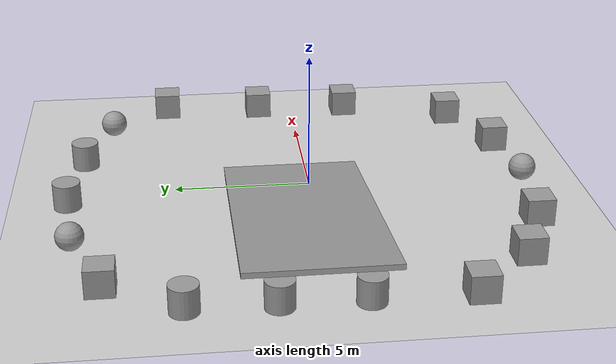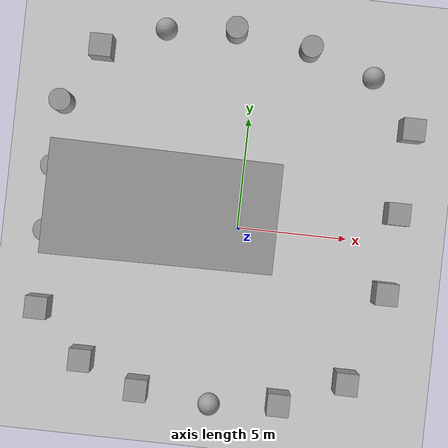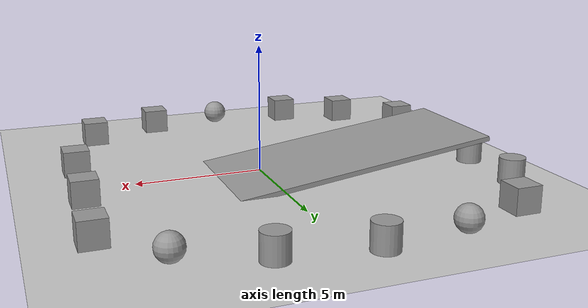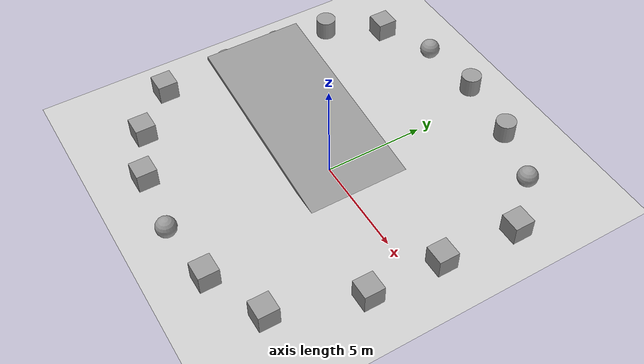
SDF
<sdf version="1.7">
 <world name="default">
  <light name="sun" type="directional">
   <pose>0 0 10 0 -0 0</pose>
   <diffuse>0.8 0.8 0.8 1</diffuse>
   <specular>0.2 0.2 0.2 1</specular>
   <attenuation>
    <range>1000</range>
    <constant>0.9</constant>
    <linear>0.01</linear>
    <quadratic>0.001</quadratic>
   </attenuation>
   <direction>-0.5 0.1 -0.9</direction>
   <spot><inner_angle>0</inner_angle><outer_angle>0</outer_angle><falloff>0</falloff></spot>
  </light>
  <model name="ground_plane">
   <static>1</static>
   <link name="link">
    <collision name="collision">
     <geometry><plane><normal>0 0 1</normal><size>100 100</size></plane></geometry>
     <surface><friction><ode><mu>100</mu><mu2>50</mu2></ode></friction></surface>
    </collision>
    <visual name="visual">
     <cast_shadows>0</cast_shadows>
     <geometry><plane><normal>0 0 1</normal><size>100 100</size></plane></geometry>
     <material>
      <script><uri>file://media/materials/scripts/gazebo.material</uri><name>Gazebo/Grey</name></script>
     </material>
    </visual>
   </link>
  </model>
  <gravity>0 0 -9.8</gravity>
  <magnetic_field>6e-06 2.3e-05 -4.2e-05</magnetic_field>
  <atmosphere type="adiabatic"/>
  <physics type="ode">
   <max_step_size>0.001</max_step_size>
   <real_time_factor>1</real_time_factor>
   <real_time_update_rate>1000</real_time_update_rate>
  </physics>
  <scene><ambient>0.4 0.4 0.4 1</ambient><background>0.7 0.7 0.7 1</background><shadows>1</shadows></scene>
  <spherical_coordinates>
   <surface_model>EARTH_WGS84</surface_model>
   <latitude_deg>0</latitude_deg>
   <longitude_deg>0</longitude_deg>
   <elevation>0</elevation>
   <heading_deg>0</heading_deg>
  </spherical_coordinates>
  <model name="Simulation_1">
   <link name="link_0">
    <inertial>
     <mass>1</mass>
     <inertia><ixx>0.145833</ixx><ixy>0</ixy><ixz>0</ixz><iyy>0.145833</iyy><iyz>0</iyz><izz>0.125</izz></inertia>
    </inertial>
    <pose>-7.3976 -1.56403 0.01208 0 -0 0</pose>
    <visual name="visual">
     <geometry><cylinder><radius>0.5</radius><length>1</length></cylinder></geometry>
     <material>
      <lighting>1</lighting>
      <script><uri>file://media/materials/scripts/gazebo.material</uri><name>Gazebo/Grey</name></script>
      <shader type="pixel"/>
     </material>
    </visual>
    <collision name="collision">
     <geometry><cylinder><radius>0.5</radius><length>1</length></cylinder></geometry>
     <surface>
      <friction>
       <ode><mu>1</mu><mu2>1</mu2><fdir1>0 0 0</fdir1><slip1>0</slip1><slip2>0</slip2></ode>
       <torsional>
        <coefficient>1</coefficient>
        <patch_radius>0</patch_radius>
        <surface_radius>0</surface_radius>
        <use_patch_radius>1</use_patch_radius>
        <ode><slip>0</slip></ode>
       </torsional>
      </friction>
      <bounce><restitution_coefficient>0</restitution_coefficient><threshold>1e+06</threshold></bounce>
      <contact>
       <collide_without_contact>0</collide_without_contact>
       <collide_without_contact_bitmask>1</collide_without_contact_bitmask>
       <collide_bitmask>1</collide_bitmask>
       <ode>
        <soft_cfm>0</soft_cfm>
        <soft_erp>0.2</soft_erp>
        <kp>1e+13</kp>
        <kd>1</kd>
        <max_vel>0.01</max_vel>
        <min_depth>0</min_depth>
       </ode>
       <bullet>
        <split_impulse>1</split_impulse>
        <split_impulse_penetration_threshold>-0.01</split_impulse_penetration_threshold>
        <soft_cfm>0</soft_cfm>
        <soft_erp>0.2</soft_erp>
        <kp>1e+13</kp>
        <kd>1</kd>
       </bullet>
      </contact>
     </surface>
    </collision>
   </link>
   <link name="link_0_clone">
    <inertial>
     <mass>1</mass>
     <inertia><ixx>0.145833</ixx><ixy>0</ixy><ixz>0</ixz><iyy>0.145833</iyy><iyz>0</iyz><izz>0.125</izz></inertia>
    </inertial>
    <pose>-7.3752 1.31634 0.01208 0 -0 0</pose>
    <visual name="visual">
     <geometry><cylinder><radius>0.5</radius><length>1</length></cylinder></geometry>
     <material>
      <lighting>1</lighting>
      <script><uri>file://media/materials/scripts/gazebo.material</uri><name>Gazebo/Grey</name></script>
      <shader type="pixel"/>
     </material>
    </visual>
    <collision name="collision">
     <geometry><cylinder><radius>0.5</radius><length>1</length></cylinder></geometry>
     <surface>
      <friction>
       <ode><mu>1</mu><mu2>1</mu2><fdir1>0 0 0</fdir1><slip1>0</slip1><slip2>0</slip2></ode>
       <torsional>
        <coefficient>1</coefficient>
        <patch_radius>0</patch_radius>
        <surface_radius>0</surface_radius>
        <use_patch_radius>1</use_patch_radius>
        <ode><slip>0</slip></ode>
       </torsional>
      </friction>
      <bounce><restitution_coefficient>0</restitution_coefficient><threshold>1e+06</threshold></bounce>
      <contact>
       <collide_without_contact>0</collide_without_contact>
       <collide_without_contact_bitmask>1</collide_without_contact_bitmask>
       <collide_bitmask>1</collide_bitmask>
       <ode>
        <soft_cfm>0</soft_cfm>
        <soft_erp>0.2</soft_erp>
        <kp>1e+13</kp>
        <kd>1</kd>
        <max_vel>0.01</max_vel>
        <min_depth>0</min_depth>
       </ode>
       <bullet>
        <split_impulse>1</split_impulse>
        <split_impulse_penetration_threshold>-0.01</split_impulse_penetration_threshold>
        <soft_cfm>0</soft_cfm>
        <soft_erp>0.2</soft_erp>
        <kp>1e+13</kp>
        <kd>1</kd>
       </bullet>
      </contact>
     </surface>
    </collision>
   </link>
   <link name="link_1">
    <inertial>
     <mass>1</mass>
     <inertia>
      <ixx>0.166667</ixx>
      <ixy>0</ixy>
      <ixz>0</ixz>
      <iyy>0.166667</iyy>
      <iyz>0</iyz>
      <izz>0.166667</izz>
     </inertia>
    </inertial>
    <pose>8.48683 4.60153 0.01208 0 -0 0</pose>
    <visual name="visual">
     <geometry><box><size>1 1 1</size></box></geometry>
     <material>
      <lighting>1</lighting>
      <script><uri>file://media/materials/scripts/gazebo.material</uri><name>Gazebo/Grey</name></script>
      <shader type="pixel"/>
     </material>
    </visual>
    <collision name="collision">
     <geometry><box><size>1 1 1</size></box></geometry>
     <surface>
      <friction>
       <ode><mu>1</mu><mu2>1</mu2><fdir1>0 0 0</fdir1><slip1>0</slip1><slip2>0</slip2></ode>
       <torsional>
        <coefficient>1</coefficient>
        <patch_radius>0</patch_radius>
        <surface_radius>0</surface_radius>
        <use_patch_radius>1</use_patch_radius>
        <ode><slip>0</slip></ode>
       </torsional>
      </friction>
      <bounce><restitution_coefficient>0</restitution_coefficient><threshold>1e+06</threshold></bounce>
      <contact>
       <collide_without_contact>0</collide_without_contact>
       <collide_without_contact_bitmask>1</collide_without_contact_bitmask>
       <collide_bitmask>1</collide_bitmask>
       <ode>
        <soft_cfm>0</soft_cfm>
        <soft_erp>0.2</soft_erp>
        <kp>1e+13</kp>
        <kd>1</kd>
        <max_vel>0.01</max_vel>
        <min_depth>0</min_depth>
       </ode>
       <bullet>
        <split_impulse>1</split_impulse>
        <split_impulse_penetration_threshold>-0.01</split_impulse_penetration_threshold>
        <soft_cfm>0</soft_cfm>
        <soft_erp>0.2</soft_erp>
        <kp>1e+13</kp>
        <kd>1</kd>
       </bullet>
      </contact>
     </surface>
    </collision>
   </link>
   <link name="link_10">
    <inertial>
     <mass>1</mass>
     <inertia>
      <ixx>0.166667</ixx>
      <ixy>0</ixy>
      <ixz>0</ixz>
      <iyy>0.166667</iyy>
      <iyz>0</iyz>
      <izz>0.166667</izz>
     </inertia>
    </inertial>
    <pose>-5.2372 -7.17002 0.01208 0 -0 0</pose>
    <visual name="visual">
     <geometry><box><size>1 1 1</size></box></geometry>
     <material>
      <lighting>1</lighting>
      <script><uri>file://media/materials/scripts/gazebo.material</uri><name>Gazebo/Grey</name></script>
      <shader type="pixel"/>
     </material>
    </visual>
    <collision name="collision">
     <geometry><box><size>1 1 1</size></box></geometry>
     <surface>
      <friction>
       <ode><mu>1</mu><mu2>1</mu2><fdir1>0 0 0</fdir1><slip1>0</slip1><slip2>0</slip2></ode>
       <torsional>
        <coefficient>1</coefficient>
        <patch_radius>0</patch_radius>
        <surface_radius>0</surface_radius>
        <use_patch_radius>1</use_patch_radius>
        <ode><slip>0</slip></ode>
       </torsional>
      </friction>
      <bounce><restitution_coefficient>0</restitution_coefficient><threshold>1e+06</threshold></bounce>
      <contact>
       <collide_without_contact>0</collide_without_contact>
       <collide_without_contact_bitmask>1</collide_without_contact_bitmask>
       <collide_bitmask>1</collide_bitmask>
       <ode>
        <soft_cfm>0</soft_cfm>
        <soft_erp>0.2</soft_erp>
        <kp>1e+13</kp>
        <kd>1</kd>
        <max_vel>0.01</max_vel>
        <min_depth>0</min_depth>
       </ode>
       <bullet>
        <split_impulse>1</split_impulse>
        <split_impulse_penetration_threshold>-0.01</split_impulse_penetration_threshold>
        <soft_cfm>0</soft_cfm>
        <soft_erp>0.2</soft_erp>
        <kp>1e+13</kp>
        <kd>1</kd>
       </bullet>
      </contact>
     </surface>
    </collision>
   </link>
   <link name="link_11">
    <inertial>
     <mass>1</mass>
     <inertia>
      <ixx>0.166667</ixx>
      <ixy>0</ixy>
      <ixz>0</ixz>
      <iyy>0.166667</iyy>
      <iyz>0</iyz>
      <izz>0.166667</izz>
     </inertia>
    </inertial>
    <pose>-7.41313 -5.04237 0.01208 0 -0 0</pose>
    <visual name="visual">
     <geometry><box><size>1 1 1</size></box></geometry>
     <material>
      <lighting>1</lighting>
      <script><uri>file://media/materials/scripts/gazebo.material</uri><name>Gazebo/Grey</name></script>
      <shader type="pixel"/>
     </material>
    </visual>
    <collision name="collision">
     <geometry><box><size>1 1 1</size></box></geometry>
     <surface>
      <friction>
       <ode><mu>1</mu><mu2>1</mu2><fdir1>0 0 0</fdir1><slip1>0</slip1><slip2>0</slip2></ode>
       <torsional>
        <coefficient>1</coefficient>
        <patch_radius>0</patch_radius>
        <surface_radius>0</surface_radius>
        <use_patch_radius>1</use_patch_radius>
        <ode><slip>0</slip></ode>
       </torsional>
      </friction>
      <bounce><restitution_coefficient>0</restitution_coefficient><threshold>1e+06</threshold></bounce>
      <contact>
       <collide_without_contact>0</collide_without_contact>
       <collide_without_contact_bitmask>1</collide_without_contact_bitmask>
       <collide_bitmask>1</collide_bitmask>
       <ode>
        <soft_cfm>0</soft_cfm>
        <soft_erp>0.2</soft_erp>
        <kp>1e+13</kp>
        <kd>1</kd>
        <max_vel>0.01</max_vel>
        <min_depth>0</min_depth>
       </ode>
       <bullet>
        <split_impulse>1</split_impulse>
        <split_impulse_penetration_threshold>-0.01</split_impulse_penetration_threshold>
        <soft_cfm>0</soft_cfm>
        <soft_erp>0.2</soft_erp>
        <kp>1e+13</kp>
        <kd>1</kd>
       </bullet>
      </contact>
     </surface>
    </collision>
   </link>
   <link name="link_12">
    <inertial>
     <mass>1</mass>
     <inertia><ixx>0.1</ixx><ixy>0</ixy><ixz>0</ixz><iyy>0.1</iyy><iyz>0</iyz><izz>0.1</izz></inertia>
    </inertial>
    <pose>-2.97702 7.9942 0.01208 0 -0 0</pose>
    <visual name="visual">
     <geometry><sphere><radius>0.5</radius></sphere></geometry>
     <material>
      <lighting>1</lighting>
      <script><uri>file://media/materials/scripts/gazebo.material</uri><name>Gazebo/Grey</name></script>
      <shader type="pixel"/>
     </material>
    </visual>
    <collision name="collision">
     <geometry><sphere><radius>0.5</radius></sphere></geometry>
     <surface>
      <friction>
       <ode><mu>1</mu><mu2>1</mu2><fdir1>0 0 0</fdir1><slip1>0</slip1><slip2>0</slip2></ode>
       <torsional>
        <coefficient>1</coefficient>
        <patch_radius>0</patch_radius>
        <surface_radius>0</surface_radius>
        <use_patch_radius>1</use_patch_radius>
        <ode><slip>0</slip></ode>
       </torsional>
      </friction>
      <bounce><restitution_coefficient>0</restitution_coefficient><threshold>1e+06</threshold></bounce>
      <contact>
       <collide_without_contact>0</collide_without_contact>
       <collide_without_contact_bitmask>1</collide_without_contact_bitmask>
       <collide_bitmask>1</collide_bitmask>
       <ode>
        <soft_cfm>0</soft_cfm>
        <soft_erp>0.2</soft_erp>
        <kp>1e+13</kp>
        <kd>1</kd>
        <max_vel>0.01</max_vel>
        <min_depth>0</min_depth>
       </ode>
       <bullet>
        <split_impulse>1</split_impulse>
        <split_impulse_penetration_threshold>-0.01</split_impulse_penetration_threshold>
        <soft_cfm>0</soft_cfm>
        <soft_erp>0.2</soft_erp>
        <kp>1e+13</kp>
        <kd>1</kd>
       </bullet>
      </contact>
     </surface>
    </collision>
   </link>
   <link name="link_13">
    <inertial>
     <mass>1</mass>
     <inertia>
      <ixx>0.166667</ixx>
      <ixy>0</ixy>
      <ixz>0</ixz>
      <iyy>0.166667</iyy>
      <iyz>0</iyz>
      <izz>0.166667</izz>
     </inertia>
    </inertial>
    <pose>-5.78283 6.87326 0.01208 0 -0 0</pose>
    <visual name="visual">
     <geometry><box><size>1 1 1</size></box></geometry>
     <material>
      <lighting>1</lighting>
      <script><uri>file://media/materials/scripts/gazebo.material</uri><name>Gazebo/Grey</name></script>
      <shader type="pixel"/>
     </material>
    </visual>
    <collision name="collision">
     <geometry><box><size>1 1 1</size></box></geometry>
     <surface>
      <friction>
       <ode><mu>1</mu><mu2>1</mu2><fdir1>0 0 0</fdir1><slip1>0</slip1><slip2>0</slip2></ode>
       <torsional>
        <coefficient>1</coefficient>
        <patch_radius>0</patch_radius>
        <surface_radius>0</surface_radius>
        <use_patch_radius>1</use_patch_radius>
        <ode><slip>0</slip></ode>
       </torsional>
      </friction>
      <bounce><restitution_coefficient>0</restitution_coefficient><threshold>1e+06</threshold></bounce>
      <contact>
       <collide_without_contact>0</collide_without_contact>
       <collide_without_contact_bitmask>1</collide_without_contact_bitmask>
       <collide_bitmask>1</collide_bitmask>
       <ode>
        <soft_cfm>0</soft_cfm>
        <soft_erp>0.2</soft_erp>
        <kp>1e+13</kp>
        <kd>1</kd>
        <max_vel>0.01</max_vel>
        <min_depth>0</min_depth>
       </ode>
       <bullet>
        <split_impulse>1</split_impulse>
        <split_impulse_penetration_threshold>-0.01</split_impulse_penetration_threshold>
        <soft_cfm>0</soft_cfm>
        <soft_erp>0.2</soft_erp>
        <kp>1e+13</kp>
        <kd>1</kd>
       </bullet>
      </contact>
     </surface>
    </collision>
   </link>
   <link name="link_14">
    <inertial>
     <mass>1</mass>
     <inertia><ixx>0.145833</ixx><ixy>0</ixy><ixz>0</ixz><iyy>0.145833</iyy><iyz>0</iyz><izz>0.125</izz></inertia>
    </inertial>
    <pose>-7.31831 4.26515 0.01208 0 -0 0</pose>
    <visual name="visual">
     <geometry><cylinder><radius>0.5</radius><length>1</length></cylinder></geometry>
     <material>
      <lighting>1</lighting>
      <script><uri>file://media/materials/scripts/gazebo.material</uri><name>Gazebo/Grey</name></script>
      <shader type="pixel"/>
     </material>
    </visual>
    <collision name="collision">
     <geometry><cylinder><radius>0.5</radius><length>1</length></cylinder></geometry>
     <surface>
      <friction>
       <ode><mu>1</mu><mu2>1</mu2><fdir1>0 0 0</fdir1><slip1>0</slip1><slip2>0</slip2></ode>
       <torsional>
        <coefficient>1</coefficient>
        <patch_radius>0</patch_radius>
        <surface_radius>0</surface_radius>
        <use_patch_radius>1</use_patch_radius>
        <ode><slip>0</slip></ode>
       </torsional>
      </friction>
      <bounce><restitution_coefficient>0</restitution_coefficient><threshold>1e+06</threshold></bounce>
      <contact>
       <collide_without_contact>0</collide_without_contact>
       <collide_without_contact_bitmask>1</collide_without_contact_bitmask>
       <collide_bitmask>1</collide_bitmask>
       <ode>
        <soft_cfm>0</soft_cfm>
        <soft_erp>0.2</soft_erp>
        <kp>1e+13</kp>
        <kd>1</kd>
        <max_vel>0.01</max_vel>
        <min_depth>0</min_depth>
       </ode>
       <bullet>
        <split_impulse>1</split_impulse>
        <split_impulse_penetration_threshold>-0.01</split_impulse_penetration_threshold>
        <soft_cfm>0</soft_cfm>
        <soft_erp>0.2</soft_erp>
        <kp>1e+13</kp>
        <kd>1</kd>
       </bullet>
      </contact>
     </surface>
    </collision>
   </link>
   <link name="link_15">
    <inertial>
     <mass>1</mass>
     <inertia><ixx>0.1</ixx><ixy>0</ixy><ixz>0</ixz><iyy>0.1</iyy><iyz>0</iyz><izz>0.1</izz></inertia>
    </inertial>
    <pose>0.69564 -8.61591 0.01208 0 -0 0</pose>
    <visual name="visual">
     <geometry><sphere><radius>0.5</radius></sphere></geometry>
     <material>
      <lighting>1</lighting>
      <script><uri>file://media/materials/scripts/gazebo.material</uri><name>Gazebo/Grey</name></script>
      <shader type="pixel"/>
     </material>
    </visual>
    <collision name="collision">
     <geometry><sphere><radius>0.5</radius></sphere></geometry>
     <surface>
      <friction>
       <ode><mu>1</mu><mu2>1</mu2><fdir1>0 0 0</fdir1><slip1>0</slip1><slip2>0</slip2></ode>
       <torsional>
        <coefficient>1</coefficient>
        <patch_radius>0</patch_radius>
        <surface_radius>0</surface_radius>
        <use_patch_radius>1</use_patch_radius>
        <ode><slip>0</slip></ode>
       </torsional>
      </friction>
      <bounce><restitution_coefficient>0</restitution_coefficient><threshold>1e+06</threshold></bounce>
      <contact>
       <collide_without_contact>0</collide_without_contact>
       <collide_without_contact_bitmask>1</collide_without_contact_bitmask>
       <collide_bitmask>1</collide_bitmask>
       <ode>
        <soft_cfm>0</soft_cfm>
        <soft_erp>0.2</soft_erp>
        <kp>1e+13</kp>
        <kd>1</kd>
        <max_vel>0.01</max_vel>
        <min_depth>0</min_depth>
       </ode>
       <bullet>
        <split_impulse>1</split_impulse>
        <split_impulse_penetration_threshold>-0.01</split_impulse_penetration_threshold>
        <soft_cfm>0</soft_cfm>
        <soft_erp>0.2</soft_erp>
        <kp>1e+13</kp>
        <kd>1</kd>
       </bullet>
      </contact>
     </surface>
    </collision>
   </link>
   <link name="link_16">
    <inertial>
     <mass>14.1424</mass>
     <inertia><ixx>30.7739</ixx><ixy>0</ixy><ixz>0</ixz><iyy>259.587</iyy><iyz>0</iyz><izz>290.279</izz></inertia>
    </inertial>
    <pose>-0.113356 -0.030729 -0.205356 0 0.129998 0</pose>
    <visual name="visual">
     <geometry><box><size>14.8401 5.10658 0.186726</size></box></geometry>
     <material>
      <lighting>1</lighting>
      <script><uri>file://media/materials/scripts/gazebo.material</uri><name>Gazebo/Grey</name></script>
      <shader type="pixel"/>
     </material>
    </visual>
    <collision name="collision">
     <geometry><box><size>14.8401 5.10658 0.186726</size></box></geometry>
     <surface>
      <friction>
       <ode><mu>1</mu><mu2>1</mu2><fdir1>0 0 0</fdir1><slip1>0</slip1><slip2>0</slip2></ode>
       <torsional>
        <coefficient>1</coefficient>
        <patch_radius>0</patch_radius>
        <surface_radius>0</surface_radius>
        <use_patch_radius>1</use_patch_radius>
        <ode><slip>0</slip></ode>
       </torsional>
      </friction>
      <bounce><restitution_coefficient>0</restitution_coefficient><threshold>1e+06</threshold></bounce>
      <contact>
       <collide_without_contact>0</collide_without_contact>
       <collide_without_contact_bitmask>1</collide_without_contact_bitmask>
       <collide_bitmask>1</collide_bitmask>
       <ode>
        <soft_cfm>0</soft_cfm>
        <soft_erp>0.2</soft_erp>
        <kp>1e+13</kp>
        <kd>1</kd>
        <max_vel>0.01</max_vel>
        <min_depth>0</min_depth>
       </ode>
       <bullet>
        <split_impulse>1</split_impulse>
        <split_impulse_penetration_threshold>-0.01</split_impulse_penetration_threshold>
        <soft_cfm>0</soft_cfm>
        <soft_erp>0.2</soft_erp>
        <kp>1e+13</kp>
        <kd>1</kd>
       </bullet>
      </contact>
     </surface>
    </collision>
   </link>
   <link name="link_2">
    <inertial>
     <mass>1</mass>
     <inertia>
      <ixx>0.166667</ixx>
      <ixy>0</ixy>
      <ixz>0</ixz>
      <iyy>0.166667</iyy>
      <iyz>0</iyz>
      <izz>0.166667</izz>
     </inertia>
    </inertial>
    <pose>8.21974 0.790151 0.01208 0 -0 0</pose>
    <visual name="visual">
     <geometry><box><size>1 1 1</size></box></geometry>
     <material>
      <lighting>1</lighting>
      <script><uri>file://media/materials/scripts/gazebo.material</uri><name>Gazebo/Grey</name></script>
      <shader type="pixel"/>
     </material>
    </visual>
    <collision name="collision">
     <geometry><box><size>1 1 1</size></box></geometry>
     <surface>
      <friction>
       <ode><mu>1</mu><mu2>1</mu2><fdir1>0 0 0</fdir1><slip1>0</slip1><slip2>0</slip2></ode>
       <torsional>
        <coefficient>1</coefficient>
        <patch_radius>0</patch_radius>
        <surface_radius>0</surface_radius>
        <use_patch_radius>1</use_patch_radius>
        <ode><slip>0</slip></ode>
       </torsional>
      </friction>
      <bounce><restitution_coefficient>0</restitution_coefficient><threshold>1e+06</threshold></bounce>
      <contact>
       <collide_without_contact>0</collide_without_contact>
       <collide_without_contact_bitmask>1</collide_without_contact_bitmask>
       <collide_bitmask>1</collide_bitmask>
       <ode>
        <soft_cfm>0</soft_cfm>
        <soft_erp>0.2</soft_erp>
        <kp>1e+13</kp>
        <kd>1</kd>
        <max_vel>0.01</max_vel>
        <min_depth>0</min_depth>
       </ode>
       <bullet>
        <split_impulse>1</split_impulse>
        <split_impulse_penetration_threshold>-0.01</split_impulse_penetration_threshold>
        <soft_cfm>0</soft_cfm>
        <soft_erp>0.2</soft_erp>
        <kp>1e+13</kp>
        <kd>1</kd>
       </bullet>
      </contact>
     </surface>
    </collision>
   </link>
   <link name="link_3">
    <inertial>
     <mass>1</mass>
     <inertia>
      <ixx>0.166667</ixx>
      <ixy>0</ixy>
      <ixz>0</ixz>
      <iyy>0.166667</iyy>
      <iyz>0</iyz>
      <izz>0.166667</izz>
     </inertia>
    </inertial>
    <pose>8.06085 -2.82228 0.01208 0 -0 0</pose>
    <visual name="visual">
     <geometry><box><size>1 1 1</size></box></geometry>
     <material>
      <lighting>1</lighting>
      <script><uri>file://media/materials/scripts/gazebo.material</uri><name>Gazebo/Grey</name></script>
      <shader type="pixel"/>
     </material>
    </visual>
    <collision name="collision">
     <geometry><box><size>1 1 1</size></box></geometry>
     <surface>
      <friction>
       <ode><mu>1</mu><mu2>1</mu2><fdir1>0 0 0</fdir1><slip1>0</slip1><slip2>0</slip2></ode>
       <torsional>
        <coefficient>1</coefficient>
        <patch_radius>0</patch_radius>
        <surface_radius>0</surface_radius>
        <use_patch_radius>1</use_patch_radius>
        <ode><slip>0</slip></ode>
       </torsional>
      </friction>
      <bounce><restitution_coefficient>0</restitution_coefficient><threshold>1e+06</threshold></bounce>
      <contact>
       <collide_without_contact>0</collide_without_contact>
       <collide_without_contact_bitmask>1</collide_without_contact_bitmask>
       <collide_bitmask>1</collide_bitmask>
       <ode>
        <soft_cfm>0</soft_cfm>
        <soft_erp>0.2</soft_erp>
        <kp>1e+13</kp>
        <kd>1</kd>
        <max_vel>0.01</max_vel>
        <min_depth>0</min_depth>
       </ode>
       <bullet>
        <split_impulse>1</split_impulse>
        <split_impulse_penetration_threshold>-0.01</split_impulse_penetration_threshold>
        <soft_cfm>0</soft_cfm>
        <soft_erp>0.2</soft_erp>
        <kp>1e+13</kp>
        <kd>1</kd>
       </bullet>
      </contact>
     </surface>
    </collision>
   </link>
   <link name="link_4">
    <inertial>
     <mass>1</mass>
     <inertia><ixx>0.1</ixx><ixy>0</ixy><ixz>0</ixz><iyy>0.1</iyy><iyz>0</iyz><izz>0.1</izz></inertia>
    </inertial>
    <pose>6.52844 6.78588 0.01208 0 -0 0</pose>
    <visual name="visual">
     <geometry><sphere><radius>0.5</radius></sphere></geometry>
     <material>
      <lighting>1</lighting>
      <script><uri>file://media/materials/scripts/gazebo.material</uri><name>Gazebo/Grey</name></script>
      <shader type="pixel"/>
     </material>
    </visual>
    <collision name="collision">
     <geometry><sphere><radius>0.5</radius></sphere></geometry>
     <surface>
      <friction>
       <ode><mu>1</mu><mu2>1</mu2><fdir1>0 0 0</fdir1><slip1>0</slip1><slip2>0</slip2></ode>
       <torsional>
        <coefficient>1</coefficient>
        <patch_radius>0</patch_radius>
        <surface_radius>0</surface_radius>
        <use_patch_radius>1</use_patch_radius>
        <ode><slip>0</slip></ode>
       </torsional>
      </friction>
      <bounce><restitution_coefficient>0</restitution_coefficient><threshold>1e+06</threshold></bounce>
      <contact>
       <collide_without_contact>0</collide_without_contact>
       <collide_without_contact_bitmask>1</collide_without_contact_bitmask>
       <collide_bitmask>1</collide_bitmask>
       <ode>
        <soft_cfm>0</soft_cfm>
        <soft_erp>0.2</soft_erp>
        <kp>1e+13</kp>
        <kd>1</kd>
        <max_vel>0.01</max_vel>
        <min_depth>0</min_depth>
       </ode>
       <bullet>
        <split_impulse>1</split_impulse>
        <split_impulse_penetration_threshold>-0.01</split_impulse_penetration_threshold>
        <soft_cfm>0</soft_cfm>
        <soft_erp>0.2</soft_erp>
        <kp>1e+13</kp>
        <kd>1</kd>
       </bullet>
      </contact>
     </surface>
    </collision>
   </link>
   <link name="link_5">
    <inertial>
     <mass>1</mass>
     <inertia><ixx>0.145833</ixx><ixy>0</ixy><ixz>0</ixz><iyy>0.145833</iyy><iyz>0</iyz><izz>0.125</izz></inertia>
    </inertial>
    <pose>3.58491 7.79184 0.01208 0 -0 0</pose>
    <visual name="visual">
     <geometry><cylinder><radius>0.5</radius><length>1</length></cylinder></geometry>
     <material>
      <lighting>1</lighting>
      <script><uri>file://media/materials/scripts/gazebo.material</uri><name>Gazebo/Grey</name></script>
      <shader type="pixel"/>
     </material>
    </visual>
    <collision name="collision">
     <geometry><cylinder><radius>0.5</radius><length>1</length></cylinder></geometry>
     <surface>
      <friction>
       <ode><mu>1</mu><mu2>1</mu2><fdir1>0 0 0</fdir1><slip1>0</slip1><slip2>0</slip2></ode>
       <torsional>
        <coefficient>1</coefficient>
        <patch_radius>0</patch_radius>
        <surface_radius>0</surface_radius>
        <use_patch_radius>1</use_patch_radius>
        <ode><slip>0</slip></ode>
       </torsional>
      </friction>
      <bounce><restitution_coefficient>0</restitution_coefficient><threshold>1e+06</threshold></bounce>
      <contact>
       <collide_without_contact>0</collide_without_contact>
       <collide_without_contact_bitmask>1</collide_without_contact_bitmask>
       <collide_bitmask>1</collide_bitmask>
       <ode>
        <soft_cfm>0</soft_cfm>
        <soft_erp>0.2</soft_erp>
        <kp>1e+13</kp>
        <kd>1</kd>
        <max_vel>0.01</max_vel>
        <min_depth>0</min_depth>
       </ode>
       <bullet>
        <split_impulse>1</split_impulse>
        <split_impulse_penetration_threshold>-0.01</split_impulse_penetration_threshold>
        <soft_cfm>0</soft_cfm>
        <soft_erp>0.2</soft_erp>
        <kp>1e+13</kp>
        <kd>1</kd>
       </bullet>
      </contact>
     </surface>
    </collision>
   </link>
   <link name="link_6">
    <inertial>
     <mass>1</mass>
     <inertia><ixx>0.145833</ixx><ixy>0</ixy><ixz>0</ixz><iyy>0.145833</iyy><iyz>0</iyz><izz>0.125</izz></inertia>
    </inertial>
    <pose>0.173383 8.28139 0.01208 0 -0 0</pose>
    <visual name="visual">
     <geometry><cylinder><radius>0.5</radius><length>1</length></cylinder></geometry>
     <material>
      <lighting>1</lighting>
      <script><uri>file://media/materials/scripts/gazebo.material</uri><name>Gazebo/Grey</name></script>
      <shader type="pixel"/>
     </material>
    </visual>
    <collision name="collision">
     <geometry><cylinder><radius>0.5</radius><length>1</length></cylinder></geometry>
     <surface>
      <friction>
       <ode><mu>1</mu><mu2>1</mu2><fdir1>0 0 0</fdir1><slip1>0</slip1><slip2>0</slip2></ode>
       <torsional>
        <coefficient>1</coefficient>
        <patch_radius>0</patch_radius>
        <surface_radius>0</surface_radius>
        <use_patch_radius>1</use_patch_radius>
        <ode><slip>0</slip></ode>
       </torsional>
      </friction>
      <bounce><restitution_coefficient>0</restitution_coefficient><threshold>1e+06</threshold></bounce>
      <contact>
       <collide_without_contact>0</collide_without_contact>
       <collide_without_contact_bitmask>1</collide_without_contact_bitmask>
       <collide_bitmask>1</collide_bitmask>
       <ode>
        <soft_cfm>0</soft_cfm>
        <soft_erp>0.2</soft_erp>
        <kp>1e+13</kp>
        <kd>1</kd>
        <max_vel>0.01</max_vel>
        <min_depth>0</min_depth>
       </ode>
       <bullet>
        <split_impulse>1</split_impulse>
        <split_impulse_penetration_threshold>-0.01</split_impulse_penetration_threshold>
        <soft_cfm>0</soft_cfm>
        <soft_erp>0.2</soft_erp>
        <kp>1e+13</kp>
        <kd>1</kd>
       </bullet>
      </contact>
     </surface>
    </collision>
   </link>
   <link name="link_7">
    <inertial>
     <mass>1</mass>
     <inertia>
      <ixx>0.166667</ixx>
      <ixy>0</ixy>
      <ixz>0</ixz>
      <iyy>0.166667</iyy>
      <iyz>0</iyz>
      <izz>0.166667</izz>
     </inertia>
    </inertial>
    <pose>6.70933 -6.98648 0.01208 0 -0 0</pose>
    <visual name="visual">
     <geometry><box><size>1 1 1</size></box></geometry>
     <material>
      <lighting>1</lighting>
      <script><uri>file://media/materials/scripts/gazebo.material</uri><name>Gazebo/Grey</name></script>
      <shader type="pixel"/>
     </material>
    </visual>
    <collision name="collision">
     <geometry><box><size>1 1 1</size></box></geometry>
     <surface>
      <friction>
       <ode><mu>1</mu><mu2>1</mu2><fdir1>0 0 0</fdir1><slip1>0</slip1><slip2>0</slip2></ode>
       <torsional>
        <coefficient>1</coefficient>
        <patch_radius>0</patch_radius>
        <surface_radius>0</surface_radius>
        <use_patch_radius>1</use_patch_radius>
        <ode><slip>0</slip></ode>
       </torsional>
      </friction>
      <bounce><restitution_coefficient>0</restitution_coefficient><threshold>1e+06</threshold></bounce>
      <contact>
       <collide_without_contact>0</collide_without_contact>
       <collide_without_contact_bitmask>1</collide_without_contact_bitmask>
       <collide_bitmask>1</collide_bitmask>
       <ode>
        <soft_cfm>0</soft_cfm>
        <soft_erp>0.2</soft_erp>
        <kp>1e+13</kp>
        <kd>1</kd>
        <max_vel>0.01</max_vel>
        <min_depth>0</min_depth>
       </ode>
       <bullet>
        <split_impulse>1</split_impulse>
        <split_impulse_penetration_threshold>-0.01</split_impulse_penetration_threshold>
        <soft_cfm>0</soft_cfm>
        <soft_erp>0.2</soft_erp>
        <kp>1e+13</kp>
        <kd>1</kd>
       </bullet>
      </contact>
     </surface>
    </collision>
   </link>
   <link name="link_8">
    <inertial>
     <mass>1</mass>
     <inertia>
      <ixx>0.166667</ixx>
      <ixy>0</ixy>
      <ixz>0</ixz>
      <iyy>0.166667</iyy>
      <iyz>0</iyz>
      <izz>0.166667</izz>
     </inertia>
    </inertial>
    <pose>3.77496 -8.22984 0.01208 0 -0 0</pose>
    <visual name="visual">
     <geometry><box><size>1 1 1</size></box></geometry>
     <material>
      <lighting>1</lighting>
      <script><uri>file://media/materials/scripts/gazebo.material</uri><name>Gazebo/Grey</name></script>
      <shader type="pixel"/>
     </material>
    </visual>
    <collision name="collision">
     <geometry><box><size>1 1 1</size></box></geometry>
     <surface>
      <friction>
       <ode><mu>1</mu><mu2>1</mu2><fdir1>0 0 0</fdir1><slip1>0</slip1><slip2>0</slip2></ode>
       <torsional>
        <coefficient>1</coefficient>
        <patch_radius>0</patch_radius>
        <surface_radius>0</surface_radius>
        <use_patch_radius>1</use_patch_radius>
        <ode><slip>0</slip></ode>
       </torsional>
      </friction>
      <bounce><restitution_coefficient>0</restitution_coefficient><threshold>1e+06</threshold></bounce>
      <contact>
       <collide_without_contact>0</collide_without_contact>
       <collide_without_contact_bitmask>1</collide_without_contact_bitmask>
       <collide_bitmask>1</collide_bitmask>
       <ode>
        <soft_cfm>0</soft_cfm>
        <soft_erp>0.2</soft_erp>
        <kp>1e+13</kp>
        <kd>1</kd>
        <max_vel>0.01</max_vel>
        <min_depth>0</min_depth>
       </ode>
       <bullet>
        <split_impulse>1</split_impulse>
        <split_impulse_penetration_threshold>-0.01</split_impulse_penetration_threshold>
        <soft_cfm>0</soft_cfm>
        <soft_erp>0.2</soft_erp>
        <kp>1e+13</kp>
        <kd>1</kd>
       </bullet>
      </contact>
     </surface>
    </collision>
   </link>
   <link name="link_9">
    <inertial>
     <mass>1</mass>
     <inertia>
      <ixx>0.166667</ixx>
      <ixy>0</ixy>
      <ixz>0</ixz>
      <iyy>0.166667</iyy>
      <iyz>0</iyz>
      <izz>0.166667</izz>
     </inertia>
    </inertial>
    <pose>-2.61945 -8.23807 0.01208 0 -0 0</pose>
    <visual name="visual">
     <geometry><box><size>1 1 1</size></box></geometry>
     <material>
      <lighting>1</lighting>
      <script><uri>file://media/materials/scripts/gazebo.material</uri><name>Gazebo/Grey</name></script>
      <shader type="pixel"/>
     </material>
    </visual>
    <collision name="collision">
     <geometry><box><size>1 1 1</size></box></geometry>
     <surface>
      <friction>
       <ode><mu>1</mu><mu2>1</mu2><fdir1>0 0 0</fdir1><slip1>0</slip1><slip2>0</slip2></ode>
       <torsional>
        <coefficient>1</coefficient>
        <patch_radius>0</patch_radius>
        <surface_radius>0</surface_radius>
        <use_patch_radius>1</use_patch_radius>
        <ode><slip>0</slip></ode>
       </torsional>
      </friction>
      <bounce><restitution_coefficient>0</restitution_coefficient><threshold>1e+06</threshold></bounce>
      <contact>
       <collide_without_contact>0</collide_without_contact>
       <collide_without_contact_bitmask>1</collide_without_contact_bitmask>
       <collide_bitmask>1</collide_bitmask>
       <ode>
        <soft_cfm>0</soft_cfm>
        <soft_erp>0.2</soft_erp>
        <kp>1e+13</kp>
        <kd>1</kd>
        <max_vel>0.01</max_vel>
        <min_depth>0</min_depth>
       </ode>
       <bullet>
        <split_impulse>1</split_impulse>
        <split_impulse_penetration_threshold>-0.01</split_impulse_penetration_threshold>
        <soft_cfm>0</soft_cfm>
        <soft_erp>0.2</soft_erp>
        <kp>1e+13</kp>
        <kd>1</kd>
       </bullet>
      </contact>
     </surface>
    </collision>
   </link>
   <static>0</static>
   <pose>-1.15319 0.589697 0.487911 0 -0 0</pose>
  </model>
 </world>
</sdf>
